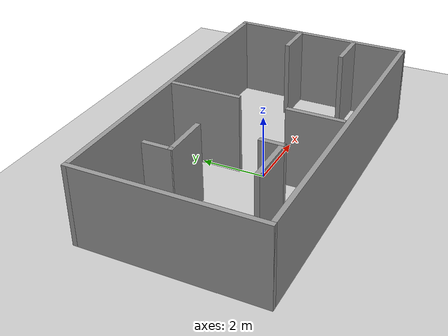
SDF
<sdf version="1.7">
 <world name="default">
  <light name="sun" type="directional">
   <pose>0 0 10 0 -0 0</pose>
   <diffuse>0.8 0.8 0.8 1</diffuse>
   <specular>0.2 0.2 0.2 1</specular>
   <attenuation>
    <range>1000</range>
    <constant>0.9</constant>
    <linear>0.01</linear>
    <quadratic>0.001</quadratic>
   </attenuation>
   <direction>-0.5 0.1 -0.9</direction>
   <spot><inner_angle>0</inner_angle><outer_angle>0</outer_angle><falloff>0</falloff></spot>
  </light>
  <model name="ground_plane">
   <static>1</static>
   <link name="link">
    <collision name="collision">
     <geometry><plane><normal>0 0 1</normal><size>100 100</size></plane></geometry>
     <surface>
      <contact><collide_bitmask>65535</collide_bitmask></contact>
      <friction><ode><mu>100</mu><mu2>50</mu2></ode></friction>
     </surface>
    </collision>
    <visual name="visual">
     <cast_shadows>0</cast_shadows>
     <geometry><plane><normal>0 0 1</normal><size>100 100</size></plane></geometry>
     <material>
      <script><uri>file://media/materials/scripts/gazebo.material</uri><name>Gazebo/Grey</name></script>
     </material>
    </visual>
   </link>
  </model>
  <gravity>0 0 -9.8</gravity>
  <magnetic_field>6e-06 2.3e-05 -4.2e-05</magnetic_field>
  <atmosphere type="adiabatic"/>
  <physics type="ode">
   <max_step_size>0.001</max_step_size>
   <real_time_factor>1</real_time_factor>
   <real_time_update_rate>1000</real_time_update_rate>
  </physics>
  <scene><ambient>0.4 0.4 0.4 1</ambient><background>0.7 0.7 0.7 1</background><shadows>1</shadows></scene>
  <spherical_coordinates>
   <surface_model>EARTH_WGS84</surface_model>
   <latitude_deg>0</latitude_deg>
   <longitude_deg>0</longitude_deg>
   <elevation>0</elevation>
   <heading_deg>0</heading_deg>
  </spherical_coordinates>
  <model name="BetterLab">
   <pose>0.047021 0.258555 0 0 -0 0</pose>
   <link name="Wall_10">
    <collision name="Wall_10_Collision">
     <geometry><box><size>10.25 0.15 2.5</size></box></geometry>
     <pose>0 0 1.25 0 -0 0</pose>
    </collision>
    <visual name="Wall_10_Visual">
     <pose>0 0 1.25 0 -0 0</pose>
     <geometry><box><size>10.25 0.15 2.5</size></box></geometry>
     <material>
      <script><uri>file://media/materials/scripts/gazebo.material</uri><name>Gazebo/Grey</name></script>
      <ambient>1 1 1 1</ambient>
     </material>
     <meta><layer>0</layer></meta>
    </visual>
    <pose>-0 2.8 0 0 -0 3.14159</pose>
   </link>
   <link name="Wall_11">
    <collision name="Wall_11_Collision">
     <geometry><box><size>5.75 0.15 2.5</size></box></geometry>
     <pose>0 0 1.25 0 -0 0</pose>
    </collision>
    <visual name="Wall_11_Visual">
     <pose>0 0 1.25 0 -0 0</pose>
     <geometry><box><size>5.75 0.15 2.5</size></box></geometry>
     <material>
      <script><uri>file://media/materials/scripts/gazebo.material</uri><name>Gazebo/Grey</name></script>
      <ambient>1 1 1 1</ambient>
     </material>
     <meta><layer>0</layer></meta>
    </visual>
    <pose>-5.05 -0 0 0 -0 -1.5708</pose>
   </link>
   <link name="Wall_13">
    <collision name="Wall_13_Collision">
     <geometry><box><size>2.25 0.15 2.5</size></box></geometry>
     <pose>0 0 1.25 0 -0 0</pose>
    </collision>
    <visual name="Wall_13_Visual">
     <pose>0 0 1.25 0 -0 0</pose>
     <geometry><box><size>2.25 0.15 2.5</size></box></geometry>
     <material>
      <script><uri>file://media/materials/scripts/gazebo.material</uri><name>Gazebo/Grey</name></script>
      <ambient>1 1 1 1</ambient>
     </material>
     <meta><layer>0</layer></meta>
    </visual>
    <pose>-0.033203 1.61545 0 0 -0 -1.5708</pose>
   </link>
   <link name="Wall_15">
    <collision name="Wall_15_Collision">
     <geometry><box><size>1.75 0.15 2.5</size></box></geometry>
     <pose>0 0 1.25 0 -0 0</pose>
    </collision>
    <visual name="Wall_15_Visual">
     <pose>0 0 1.25 0 -0 0</pose>
     <geometry><box><size>1.75 0.15 2.5</size></box></geometry>
     <material>
      <script><uri>file://media/materials/scripts/gazebo.material</uri><name>Gazebo/Grey</name></script>
      <ambient>1 1 1 1</ambient>
     </material>
     <meta><layer>0</layer></meta>
    </visual>
    <pose>-0.07399 -1.83685 0 0 -0 1.5708</pose>
   </link>
   <link name="Wall_17">
    <collision name="Wall_17_Collision">
     <geometry><box><size>0.882917 0.15 2.5</size></box></geometry>
     <pose>0 0 1.25 0 -0 0</pose>
    </collision>
    <visual name="Wall_17_Visual">
     <pose>0 0 1.25 0 -0 0</pose>
     <geometry><box><size>0.882917 0.15 2.5</size></box></geometry>
     <material>
      <script><uri>file://media/materials/scripts/gazebo.material</uri><name>Gazebo/Grey</name></script>
      <ambient>1 1 1 1</ambient>
     </material>
     <meta><layer>0</layer></meta>
    </visual>
    <pose>-3.29616 1.23853 0 0 -0 -1.5708</pose>
   </link>
   <link name="Wall_18">
    <collision name="Wall_18_Collision">
     <geometry><box><size>1.5 0.15 2.5</size></box></geometry>
     <pose>0 0 1.25 0 -0 0</pose>
    </collision>
    <visual name="Wall_18_Visual">
     <pose>0 0 1.25 0 -0 0</pose>
     <geometry><box><size>1.5 0.15 2.5</size></box></geometry>
     <material>
      <script><uri>file://media/materials/scripts/gazebo.material</uri><name>Gazebo/Grey</name></script>
      <ambient>1 1 1 1</ambient>
     </material>
     <meta><layer>0</layer></meta>
    </visual>
    <pose>-2.62116 0.831289 0 0 -0 0</pose>
   </link>
   <link name="Wall_20">
    <collision name="Wall_20_Collision">
     <geometry><box><size>1.58685 0.15 2.5</size></box></geometry>
     <pose>0 0 1.25 0 -0 0</pose>
    </collision>
    <visual name="Wall_20_Visual">
     <pose>0 0 1.25 0 -0 0</pose>
     <geometry><box><size>1.58685 0.15 2.5</size></box></geometry>
     <material>
      <script><uri>file://media/materials/scripts/gazebo.material</uri><name>Gazebo/Grey</name></script>
      <ambient>1 1 1 1</ambient>
     </material>
     <meta><layer>0</layer></meta>
    </visual>
    <pose>-2.65931 -1.65796 0 0 -0 0</pose>
   </link>
   <link name="Wall_21">
    <collision name="Wall_21_Collision">
     <geometry><box><size>0.75 0.15 2.5</size></box></geometry>
     <pose>0 0 1.25 0 -0 0</pose>
    </collision>
    <visual name="Wall_21_Visual">
     <pose>0 0 1.25 0 -0 0</pose>
     <geometry><box><size>0.75 0.15 2.5</size></box></geometry>
     <material>
      <script><uri>file://media/materials/scripts/gazebo.material</uri><name>Gazebo/Grey</name></script>
      <ambient>1 1 1 1</ambient>
     </material>
     <meta><layer>0</layer></meta>
    </visual>
    <pose>-1.9001 -1.35797 0 0 -0 1.5708</pose>
   </link>
   <link name="Wall_23">
    <collision name="Wall_23_Collision">
     <geometry><box><size>1.25 0.15 2.5</size></box></geometry>
     <pose>0 0 1.25 0 -0 0</pose>
    </collision>
    <visual name="Wall_23_Visual">
     <pose>0 0 1.25 0 -0 0</pose>
     <geometry><box><size>1.25 0.15 2.5</size></box></geometry>
     <material>
      <script><uri>file://media/materials/scripts/gazebo.material</uri><name>Gazebo/Grey</name></script>
      <ambient>1 1 1 1</ambient>
     </material>
     <meta><layer>0</layer></meta>
    </visual>
    <pose>4.39281 -1.16852 0 0 -0 3.14159</pose>
   </link>
   <link name="Wall_26">
    <collision name="Wall_26_Collision">
     <geometry><box><size>1.25 0.15 2.5</size></box></geometry>
     <pose>0 0 1.25 0 -0 0</pose>
    </collision>
    <visual name="Wall_26_Visual">
     <pose>0 0 1.25 0 -0 0</pose>
     <geometry><box><size>1.25 0.15 2.5</size></box></geometry>
     <material>
      <script><uri>file://media/materials/scripts/gazebo.material</uri><name>Gazebo/Grey</name></script>
      <ambient>1 1 1 1</ambient>
     </material>
     <meta><layer>0</layer></meta>
    </visual>
    <pose>4.47438 0.70768 0 0 -0 3.14159</pose>
   </link>
   <link name="Wall_8">
    <collision name="Wall_8_Collision">
     <geometry><box><size>10.25 0.15 2.5</size></box></geometry>
     <pose>0 0 1.25 0 -0 0</pose>
    </collision>
    <visual name="Wall_8_Visual">
     <pose>0 0 1.25 0 -0 0</pose>
     <geometry><box><size>10.25 0.15 2.5</size></box></geometry>
     <material>
      <script><uri>file://media/materials/scripts/gazebo.material</uri><name>Gazebo/Grey</name></script>
      <ambient>1 1 1 1</ambient>
     </material>
     <meta><layer>0</layer></meta>
    </visual>
    <pose>-0 -2.8 0 0 -0 0</pose>
   </link>
   <link name="Wall_9">
    <collision name="Wall_9_Collision">
     <geometry><box><size>5.75 0.15 2.5</size></box></geometry>
     <pose>0 0 1.25 0 -0 0</pose>
    </collision>
    <visual name="Wall_9_Visual">
     <pose>0 0 1.25 0 -0 0</pose>
     <geometry><box><size>5.75 0.15 2.5</size></box></geometry>
     <material>
      <script><uri>file://media/materials/scripts/gazebo.material</uri><name>Gazebo/Grey</name></script>
      <ambient>1 1 1 1</ambient>
     </material>
     <meta><layer>0</layer></meta>
    </visual>
    <pose>5.05 -0 0 0 -0 1.5708</pose>
   </link>
   <static>1</static>
  </model>
 </world>
</sdf>
